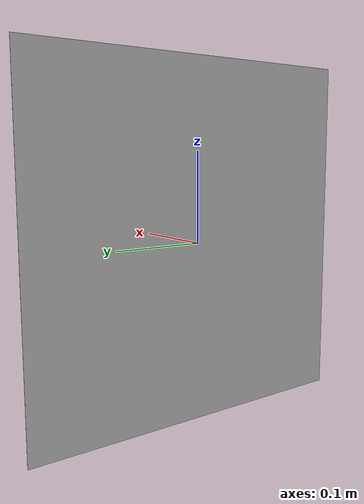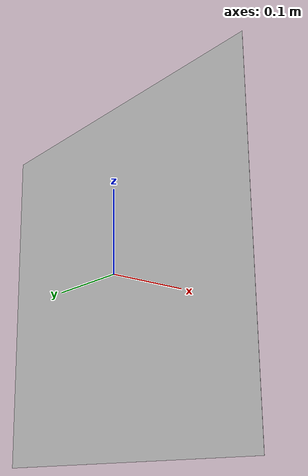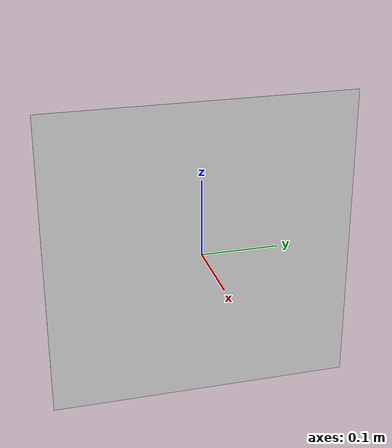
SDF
<?xml version="1.0"?>
<sdf version="1.6">
  <model name="aruco_marker">
    <static>true</static>
    <link name="link">
      <inertial>
        <pose>0 0 0 0 0 0</pose>
        <mass>0.001</mass>
        <inertia>
          <ixx>3.7499999999999997e-06</ixx>
          <ixy>0.0</ixy>
          <ixz>0.0</ixz>
          <iyy>1.8750008333333333e-06</iyy>
          <iyz>0.0</iyz>
          <izz>1.8750008333333333e-06</izz>
        </inertia>
      </inertial>
      <visual name="front_visual">
        <pose>0.00005 0 0 0 0 0</pose>
        <geometry>
          <box>
            <size>0.0001 0.4 0.4</size>
          </box>
        </geometry>
        <material>
          <diffuse>1.0 1.0 1.0</diffuse>
          <specular>1.0 1.0 1.0</specular>
          <pbr>
            <metal>
              <albedo_map>model://aruco_marker/materials/textures/aruco_27.png</albedo_map>
              <normal_map>model://aruco_marker/materials/textures/aruco_27.png</normal_map>
            </metal>
          </pbr>
        </material>
      </visual>
      <!-- Hide the marker from the back -->
      <visual name="rear_visual">
        <pose>-0.00005 0 0 0 0 0</pose>
        <geometry>
          <box>
            <size>0.0001 0.4 0.4</size>
          </box>
        </geometry>
      </visual>
      <collision name="collision">
        <pose>0 0 0 0 0 0</pose>
        <geometry>
          <box>
            <size>0.0001 0.4 0.4</size>
          </box>
        </geometry>
      </collision>
    </link>
  </model>
</sdf>
